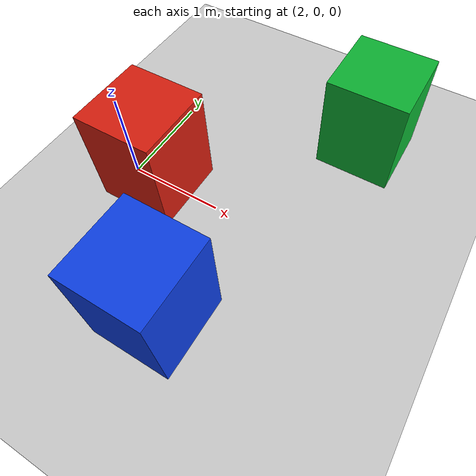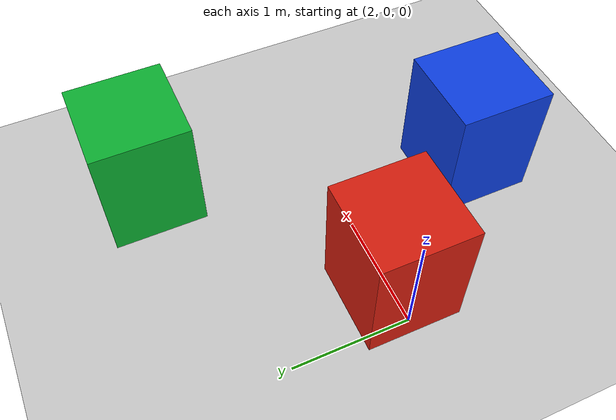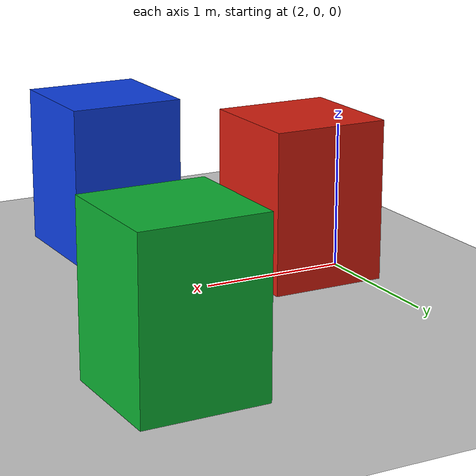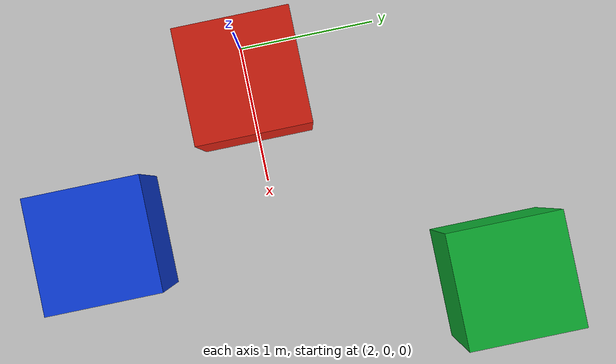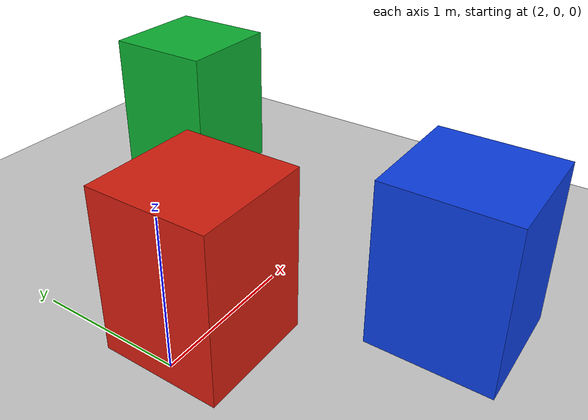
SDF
<?xml version="1.0"?>
<sdf version="1.6"><world name="default">
  <include><uri>model://ground_plane</uri></include><include><uri>model://sun</uri></include>
  <physics type="ode"><real_time_update_rate>500</real_time_update_rate></physics>
  <gui><camera name="overview"><pose>-5.5 -8.5 9 0 0.68 0.65</pose><view_controller>orbit</view_controller></camera></gui>
  <model name="block_center"><static>true</static><pose>2.3 0 0.55 0 0 0</pose><link name="link">
    <collision name="collision"><geometry><box><size>0.8 0.8 1.1</size></box></geometry></collision>
    <visual name="visual"><geometry><box><size>0.8 0.8 1.1</size></box></geometry><material><ambient>0.85 0.12 0.06 1</ambient><diffuse>0.85 0.12 0.06 1</diffuse></material></visual>
  </link></model>
  <model name="block_right"><static>true</static><pose>3.2 -1.2 0.55 0 0 0</pose><link name="link">
    <collision name="collision"><geometry><box><size>0.8 0.8 1.1</size></box></geometry></collision>
    <visual name="visual"><geometry><box><size>0.8 0.8 1.1</size></box></geometry><material><ambient>0.05 0.25 0.9 1</ambient><diffuse>0.05 0.25 0.9 1</diffuse></material></visual>
  </link></model>
  <model name="block_left"><static>true</static><pose>4.0 1.5 0.55 0 0 0</pose><link name="link">
    <collision name="collision"><geometry><box><size>0.8 0.8 1.1</size></box></geometry></collision>
    <visual name="visual"><geometry><box><size>0.8 0.8 1.1</size></box></geometry><material><ambient>0.05 0.7 0.2 1</ambient><diffuse>0.05 0.7 0.2 1</diffuse></material></visual>
  </link></model>
</world></sdf>
